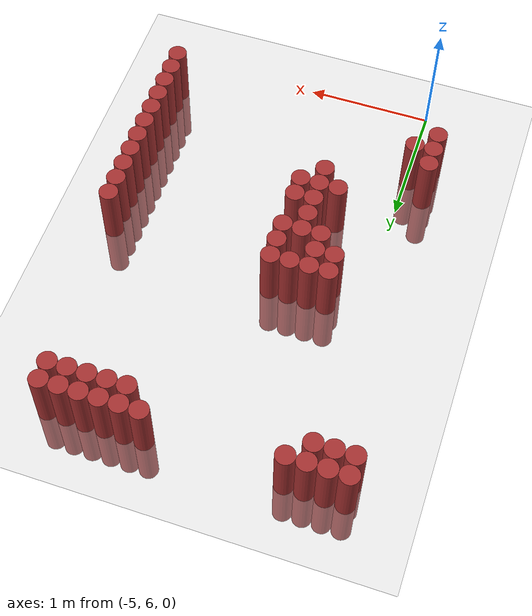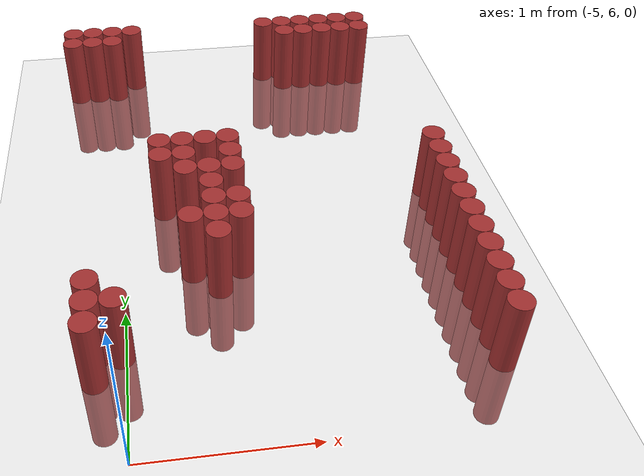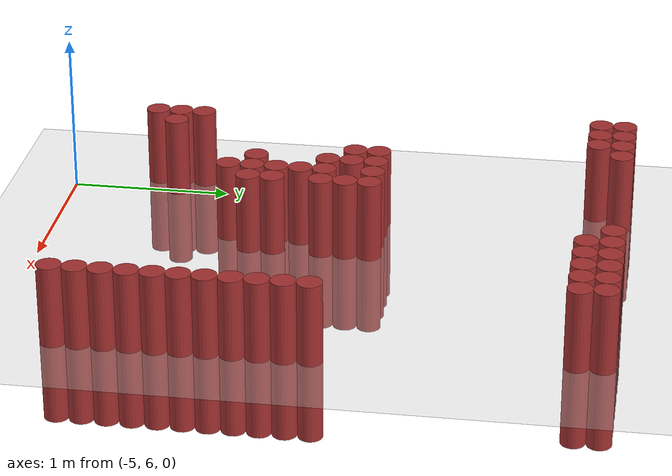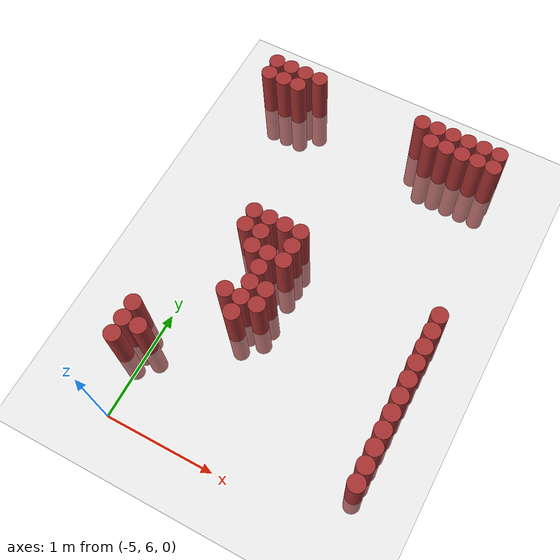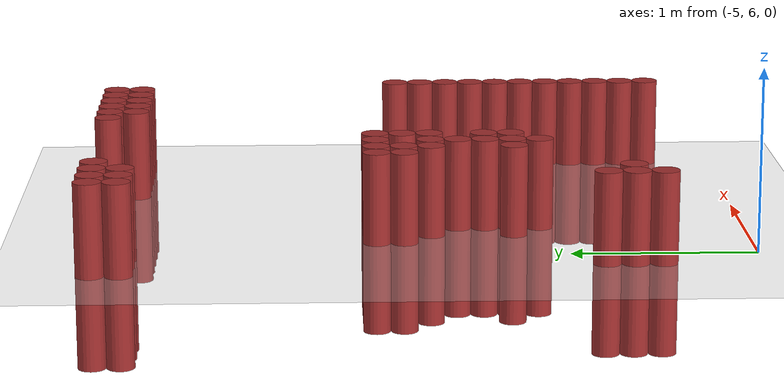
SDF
<sdf version="1.6">
 <world name="default">
  <model name="ground_plane">
   <static>1</static>
   <link name="link">
    <collision name="collision">
     <geometry><plane><normal>0 0 1</normal><size>100 100</size></plane></geometry>
     <surface><friction><ode><mu>100</mu><mu2>50</mu2></ode></friction></surface>
    </collision>
    <visual name="visual">
     <cast_shadows>0</cast_shadows>
     <geometry><plane><normal>0 0 1</normal><size>100 100</size></plane></geometry>
     <material>
      <script><uri>file://media/materials/scripts/gazebo.material</uri><name>Gazebo/Grey</name></script>
     </material>
    </visual>
   </link>
  </model>
  <model name="unit_cylinder_249">
   <static>1</static>
   <pose>-5.325000 9.375000 0.000000 0.000000 0.000000 0.000000</pose>
   <link name="link">
    <inertial>
     <mass>1</mass>
     <inertia><ixx>0.145833</ixx><ixy>0</ixy><ixz>0</ixz><iyy>0.145833</iyy><iyz>0</iyz><izz>0.125</izz></inertia>
    </inertial>
    <collision name="collision">
     <geometry><cylinder><radius>0.075000</radius><length>1</length></cylinder></geometry>
    </collision>
    <visual name="visual">
     <geometry><cylinder><radius>0.075000</radius><length>1</length></cylinder></geometry>
     <material>
      <ambient>0.648000 0.192000 0.192000 1</ambient>
      <diffuse>0.648000 0.192000 0.192000 1</diffuse>
     </material>
     <material>
      <script><name>Gazebo/Grey</name><uri>file://media/materials/scripts/gazebo.material</uri></script>
     </material>
    </visual>
   </link>
  </model>
  <model name="unit_cylinder_250">
   <static>1</static>
   <pose>-5.325000 9.525000 0.000000 0.000000 0.000000 0.000000</pose>
   <link name="link">
    <inertial>
     <mass>1</mass>
     <inertia><ixx>0.145833</ixx><ixy>0</ixy><ixz>0</ixz><iyy>0.145833</iyy><iyz>0</iyz><izz>0.125</izz></inertia>
    </inertial>
    <collision name="collision">
     <geometry><cylinder><radius>0.075000</radius><length>1</length></cylinder></geometry>
    </collision>
    <visual name="visual">
     <geometry><cylinder><radius>0.075000</radius><length>1</length></cylinder></geometry>
     <material>
      <ambient>0.648000 0.192000 0.192000 1</ambient>
      <diffuse>0.648000 0.192000 0.192000 1</diffuse>
     </material>
     <material>
      <script><name>Gazebo/Grey</name><uri>file://media/materials/scripts/gazebo.material</uri></script>
     </material>
    </visual>
   </link>
  </model>
  <model name="unit_cylinder_251">
   <static>1</static>
   <pose>-5.175000 6.525000 0.000000 0.000000 0.000000 0.000000</pose>
   <link name="link">
    <inertial>
     <mass>1</mass>
     <inertia><ixx>0.145833</ixx><ixy>0</ixy><ixz>0</ixz><iyy>0.145833</iyy><iyz>0</iyz><izz>0.125</izz></inertia>
    </inertial>
    <collision name="collision">
     <geometry><cylinder><radius>0.075000</radius><length>1</length></cylinder></geometry>
    </collision>
    <visual name="visual">
     <geometry><cylinder><radius>0.075000</radius><length>1</length></cylinder></geometry>
     <material>
      <ambient>0.648000 0.192000 0.192000 1</ambient>
      <diffuse>0.648000 0.192000 0.192000 1</diffuse>
     </material>
     <material>
      <script><name>Gazebo/Grey</name><uri>file://media/materials/scripts/gazebo.material</uri></script>
     </material>
    </visual>
   </link>
  </model>
  <model name="unit_cylinder_252">
   <static>1</static>
   <pose>-5.175000 6.675000 0.000000 0.000000 0.000000 0.000000</pose>
   <link name="link">
    <inertial>
     <mass>1</mass>
     <inertia><ixx>0.145833</ixx><ixy>0</ixy><ixz>0</ixz><iyy>0.145833</iyy><iyz>0</iyz><izz>0.125</izz></inertia>
    </inertial>
    <collision name="collision">
     <geometry><cylinder><radius>0.075000</radius><length>1</length></cylinder></geometry>
    </collision>
    <visual name="visual">
     <geometry><cylinder><radius>0.075000</radius><length>1</length></cylinder></geometry>
     <material>
      <ambient>0.648000 0.192000 0.192000 1</ambient>
      <diffuse>0.648000 0.192000 0.192000 1</diffuse>
     </material>
     <material>
      <script><name>Gazebo/Grey</name><uri>file://media/materials/scripts/gazebo.material</uri></script>
     </material>
    </visual>
   </link>
  </model>
  <model name="unit_cylinder_253">
   <static>1</static>
   <pose>-5.175000 6.825000 0.000000 0.000000 0.000000 0.000000</pose>
   <link name="link">
    <inertial>
     <mass>1</mass>
     <inertia><ixx>0.145833</ixx><ixy>0</ixy><ixz>0</ixz><iyy>0.145833</iyy><iyz>0</iyz><izz>0.125</izz></inertia>
    </inertial>
    <collision name="collision">
     <geometry><cylinder><radius>0.075000</radius><length>1</length></cylinder></geometry>
    </collision>
    <visual name="visual">
     <geometry><cylinder><radius>0.075000</radius><length>1</length></cylinder></geometry>
     <material>
      <ambient>0.648000 0.192000 0.192000 1</ambient>
      <diffuse>0.648000 0.192000 0.192000 1</diffuse>
     </material>
     <material>
      <script><name>Gazebo/Grey</name><uri>file://media/materials/scripts/gazebo.material</uri></script>
     </material>
    </visual>
   </link>
  </model>
  <model name="unit_cylinder_254">
   <static>1</static>
   <pose>-5.175000 9.375000 0.000000 0.000000 0.000000 0.000000</pose>
   <link name="link">
    <inertial>
     <mass>1</mass>
     <inertia><ixx>0.145833</ixx><ixy>0</ixy><ixz>0</ixz><iyy>0.145833</iyy><iyz>0</iyz><izz>0.125</izz></inertia>
    </inertial>
    <collision name="collision">
     <geometry><cylinder><radius>0.075000</radius><length>1</length></cylinder></geometry>
    </collision>
    <visual name="visual">
     <geometry><cylinder><radius>0.075000</radius><length>1</length></cylinder></geometry>
     <material>
      <ambient>0.648000 0.192000 0.192000 1</ambient>
      <diffuse>0.648000 0.192000 0.192000 1</diffuse>
     </material>
     <material>
      <script><name>Gazebo/Grey</name><uri>file://media/materials/scripts/gazebo.material</uri></script>
     </material>
    </visual>
   </link>
  </model>
  <model name="unit_cylinder_255">
   <static>1</static>
   <pose>-5.175000 9.525000 0.000000 0.000000 0.000000 0.000000</pose>
   <link name="link">
    <inertial>
     <mass>1</mass>
     <inertia><ixx>0.145833</ixx><ixy>0</ixy><ixz>0</ixz><iyy>0.145833</iyy><iyz>0</iyz><izz>0.125</izz></inertia>
    </inertial>
    <collision name="collision">
     <geometry><cylinder><radius>0.075000</radius><length>1</length></cylinder></geometry>
    </collision>
    <visual name="visual">
     <geometry><cylinder><radius>0.075000</radius><length>1</length></cylinder></geometry>
     <material>
      <ambient>0.648000 0.192000 0.192000 1</ambient>
      <diffuse>0.648000 0.192000 0.192000 1</diffuse>
     </material>
     <material>
      <script><name>Gazebo/Grey</name><uri>file://media/materials/scripts/gazebo.material</uri></script>
     </material>
    </visual>
   </link>
  </model>
  <model name="unit_cylinder_256">
   <static>1</static>
   <pose>-5.025000 6.675000 0.000000 0.000000 0.000000 0.000000</pose>
   <link name="link">
    <inertial>
     <mass>1</mass>
     <inertia><ixx>0.145833</ixx><ixy>0</ixy><ixz>0</ixz><iyy>0.145833</iyy><iyz>0</iyz><izz>0.125</izz></inertia>
    </inertial>
    <collision name="collision">
     <geometry><cylinder><radius>0.075000</radius><length>1</length></cylinder></geometry>
    </collision>
    <visual name="visual">
     <geometry><cylinder><radius>0.075000</radius><length>1</length></cylinder></geometry>
     <material>
      <ambient>0.648000 0.192000 0.192000 1</ambient>
      <diffuse>0.648000 0.192000 0.192000 1</diffuse>
     </material>
     <material>
      <script><name>Gazebo/Grey</name><uri>file://media/materials/scripts/gazebo.material</uri></script>
     </material>
    </visual>
   </link>
  </model>
  <model name="unit_cylinder_257">
   <static>1</static>
   <pose>-5.025000 9.375000 0.000000 0.000000 0.000000 0.000000</pose>
   <link name="link">
    <inertial>
     <mass>1</mass>
     <inertia><ixx>0.145833</ixx><ixy>0</ixy><ixz>0</ixz><iyy>0.145833</iyy><iyz>0</iyz><izz>0.125</izz></inertia>
    </inertial>
    <collision name="collision">
     <geometry><cylinder><radius>0.075000</radius><length>1</length></cylinder></geometry>
    </collision>
    <visual name="visual">
     <geometry><cylinder><radius>0.075000</radius><length>1</length></cylinder></geometry>
     <material>
      <ambient>0.648000 0.192000 0.192000 1</ambient>
      <diffuse>0.648000 0.192000 0.192000 1</diffuse>
     </material>
     <material>
      <script><name>Gazebo/Grey</name><uri>file://media/materials/scripts/gazebo.material</uri></script>
     </material>
    </visual>
   </link>
  </model>
  <model name="unit_cylinder_258">
   <static>1</static>
   <pose>-5.025000 9.525000 0.000000 0.000000 0.000000 0.000000</pose>
   <link name="link">
    <inertial>
     <mass>1</mass>
     <inertia><ixx>0.145833</ixx><ixy>0</ixy><ixz>0</ixz><iyy>0.145833</iyy><iyz>0</iyz><izz>0.125</izz></inertia>
    </inertial>
    <collision name="collision">
     <geometry><cylinder><radius>0.075000</radius><length>1</length></cylinder></geometry>
    </collision>
    <visual name="visual">
     <geometry><cylinder><radius>0.075000</radius><length>1</length></cylinder></geometry>
     <material>
      <ambient>0.648000 0.192000 0.192000 1</ambient>
      <diffuse>0.648000 0.192000 0.192000 1</diffuse>
     </material>
     <material>
      <script><name>Gazebo/Grey</name><uri>file://media/materials/scripts/gazebo.material</uri></script>
     </material>
    </visual>
   </link>
  </model>
  <model name="unit_cylinder_260">
   <static>1</static>
   <pose>-4.875000 9.525000 0.000000 0.000000 0.000000 0.000000</pose>
   <link name="link">
    <inertial>
     <mass>1</mass>
     <inertia><ixx>0.145833</ixx><ixy>0</ixy><ixz>0</ixz><iyy>0.145833</iyy><iyz>0</iyz><izz>0.125</izz></inertia>
    </inertial>
    <collision name="collision">
     <geometry><cylinder><radius>0.075000</radius><length>1</length></cylinder></geometry>
    </collision>
    <visual name="visual">
     <geometry><cylinder><radius>0.075000</radius><length>1</length></cylinder></geometry>
     <material>
      <ambient>0.648000 0.192000 0.192000 1</ambient>
      <diffuse>0.648000 0.192000 0.192000 1</diffuse>
     </material>
     <material>
      <script><name>Gazebo/Grey</name><uri>file://media/materials/scripts/gazebo.material</uri></script>
     </material>
    </visual>
   </link>
  </model>
  <model name="unit_cylinder_262">
   <static>1</static>
   <pose>-4.725000 7.875000 0.000000 0.000000 0.000000 0.000000</pose>
   <link name="link">
    <inertial>
     <mass>1</mass>
     <inertia><ixx>0.145833</ixx><ixy>0</ixy><ixz>0</ixz><iyy>0.145833</iyy><iyz>0</iyz><izz>0.125</izz></inertia>
    </inertial>
    <collision name="collision">
     <geometry><cylinder><radius>0.075000</radius><length>1</length></cylinder></geometry>
    </collision>
    <visual name="visual">
     <geometry><cylinder><radius>0.075000</radius><length>1</length></cylinder></geometry>
     <material>
      <ambient>0.648000 0.192000 0.192000 1</ambient>
      <diffuse>0.648000 0.192000 0.192000 1</diffuse>
     </material>
     <material>
      <script><name>Gazebo/Grey</name><uri>file://media/materials/scripts/gazebo.material</uri></script>
     </material>
    </visual>
   </link>
  </model>
  <model name="unit_cylinder_263">
   <static>1</static>
   <pose>-4.725000 8.025000 0.000000 0.000000 0.000000 0.000000</pose>
   <link name="link">
    <inertial>
     <mass>1</mass>
     <inertia><ixx>0.145833</ixx><ixy>0</ixy><ixz>0</ixz><iyy>0.145833</iyy><iyz>0</iyz><izz>0.125</izz></inertia>
    </inertial>
    <collision name="collision">
     <geometry><cylinder><radius>0.075000</radius><length>1</length></cylinder></geometry>
    </collision>
    <visual name="visual">
     <geometry><cylinder><radius>0.075000</radius><length>1</length></cylinder></geometry>
     <material>
      <ambient>0.648000 0.192000 0.192000 1</ambient>
      <diffuse>0.648000 0.192000 0.192000 1</diffuse>
     </material>
     <material>
      <script><name>Gazebo/Grey</name><uri>file://media/materials/scripts/gazebo.material</uri></script>
     </material>
    </visual>
   </link>
  </model>
  <model name="unit_cylinder_265">
   <static>1</static>
   <pose>-4.575000 7.275000 0.000000 0.000000 0.000000 0.000000</pose>
   <link name="link">
    <inertial>
     <mass>1</mass>
     <inertia><ixx>0.145833</ixx><ixy>0</ixy><ixz>0</ixz><iyy>0.145833</iyy><iyz>0</iyz><izz>0.125</izz></inertia>
    </inertial>
    <collision name="collision">
     <geometry><cylinder><radius>0.075000</radius><length>1</length></cylinder></geometry>
    </collision>
    <visual name="visual">
     <geometry><cylinder><radius>0.075000</radius><length>1</length></cylinder></geometry>
     <material>
      <ambient>0.648000 0.192000 0.192000 1</ambient>
      <diffuse>0.648000 0.192000 0.192000 1</diffuse>
     </material>
     <material>
      <script><name>Gazebo/Grey</name><uri>file://media/materials/scripts/gazebo.material</uri></script>
     </material>
    </visual>
   </link>
  </model>
  <model name="unit_cylinder_266">
   <static>1</static>
   <pose>-4.575000 7.725000 0.000000 0.000000 0.000000 0.000000</pose>
   <link name="link">
    <inertial>
     <mass>1</mass>
     <inertia><ixx>0.145833</ixx><ixy>0</ixy><ixz>0</ixz><iyy>0.145833</iyy><iyz>0</iyz><izz>0.125</izz></inertia>
    </inertial>
    <collision name="collision">
     <geometry><cylinder><radius>0.075000</radius><length>1</length></cylinder></geometry>
    </collision>
    <visual name="visual">
     <geometry><cylinder><radius>0.075000</radius><length>1</length></cylinder></geometry>
     <material>
      <ambient>0.648000 0.192000 0.192000 1</ambient>
      <diffuse>0.648000 0.192000 0.192000 1</diffuse>
     </material>
     <material>
      <script><name>Gazebo/Grey</name><uri>file://media/materials/scripts/gazebo.material</uri></script>
     </material>
    </visual>
   </link>
  </model>
  <model name="unit_cylinder_267">
   <static>1</static>
   <pose>-4.575000 7.875000 0.000000 0.000000 0.000000 0.000000</pose>
   <link name="link">
    <inertial>
     <mass>1</mass>
     <inertia><ixx>0.145833</ixx><ixy>0</ixy><ixz>0</ixz><iyy>0.145833</iyy><iyz>0</iyz><izz>0.125</izz></inertia>
    </inertial>
    <collision name="collision">
     <geometry><cylinder><radius>0.075000</radius><length>1</length></cylinder></geometry>
    </collision>
    <visual name="visual">
     <geometry><cylinder><radius>0.075000</radius><length>1</length></cylinder></geometry>
     <material>
      <ambient>0.648000 0.192000 0.192000 1</ambient>
      <diffuse>0.648000 0.192000 0.192000 1</diffuse>
     </material>
     <material>
      <script><name>Gazebo/Grey</name><uri>file://media/materials/scripts/gazebo.material</uri></script>
     </material>
    </visual>
   </link>
  </model>
  <model name="unit_cylinder_268">
   <static>1</static>
   <pose>-4.575000 8.025000 0.000000 0.000000 0.000000 0.000000</pose>
   <link name="link">
    <inertial>
     <mass>1</mass>
     <inertia><ixx>0.145833</ixx><ixy>0</ixy><ixz>0</ixz><iyy>0.145833</iyy><iyz>0</iyz><izz>0.125</izz></inertia>
    </inertial>
    <collision name="collision">
     <geometry><cylinder><radius>0.075000</radius><length>1</length></cylinder></geometry>
    </collision>
    <visual name="visual">
     <geometry><cylinder><radius>0.075000</radius><length>1</length></cylinder></geometry>
     <material>
      <ambient>0.648000 0.192000 0.192000 1</ambient>
      <diffuse>0.648000 0.192000 0.192000 1</diffuse>
     </material>
     <material>
      <script><name>Gazebo/Grey</name><uri>file://media/materials/scripts/gazebo.material</uri></script>
     </material>
    </visual>
   </link>
  </model>
  <model name="unit_cylinder_270">
   <static>1</static>
   <pose>-4.425000 7.125000 0.000000 0.000000 0.000000 0.000000</pose>
   <link name="link">
    <inertial>
     <mass>1</mass>
     <inertia><ixx>0.145833</ixx><ixy>0</ixy><ixz>0</ixz><iyy>0.145833</iyy><iyz>0</iyz><izz>0.125</izz></inertia>
    </inertial>
    <collision name="collision">
     <geometry><cylinder><radius>0.075000</radius><length>1</length></cylinder></geometry>
    </collision>
    <visual name="visual">
     <geometry><cylinder><radius>0.075000</radius><length>1</length></cylinder></geometry>
     <material>
      <ambient>0.648000 0.192000 0.192000 1</ambient>
      <diffuse>0.648000 0.192000 0.192000 1</diffuse>
     </material>
     <material>
      <script><name>Gazebo/Grey</name><uri>file://media/materials/scripts/gazebo.material</uri></script>
     </material>
    </visual>
   </link>
  </model>
  <model name="unit_cylinder_271">
   <static>1</static>
   <pose>-4.425000 7.275000 0.000000 0.000000 0.000000 0.000000</pose>
   <link name="link">
    <inertial>
     <mass>1</mass>
     <inertia><ixx>0.145833</ixx><ixy>0</ixy><ixz>0</ixz><iyy>0.145833</iyy><iyz>0</iyz><izz>0.125</izz></inertia>
    </inertial>
    <collision name="collision">
     <geometry><cylinder><radius>0.075000</radius><length>1</length></cylinder></geometry>
    </collision>
    <visual name="visual">
     <geometry><cylinder><radius>0.075000</radius><length>1</length></cylinder></geometry>
     <material>
      <ambient>0.648000 0.192000 0.192000 1</ambient>
      <diffuse>0.648000 0.192000 0.192000 1</diffuse>
     </material>
     <material>
      <script><name>Gazebo/Grey</name><uri>file://media/materials/scripts/gazebo.material</uri></script>
     </material>
    </visual>
   </link>
  </model>
  <model name="unit_cylinder_272">
   <static>1</static>
   <pose>-4.425000 7.425000 0.000000 0.000000 0.000000 0.000000</pose>
   <link name="link">
    <inertial>
     <mass>1</mass>
     <inertia><ixx>0.145833</ixx><ixy>0</ixy><ixz>0</ixz><iyy>0.145833</iyy><iyz>0</iyz><izz>0.125</izz></inertia>
    </inertial>
    <collision name="collision">
     <geometry><cylinder><radius>0.075000</radius><length>1</length></cylinder></geometry>
    </collision>
    <visual name="visual">
     <geometry><cylinder><radius>0.075000</radius><length>1</length></cylinder></geometry>
     <material>
      <ambient>0.648000 0.192000 0.192000 1</ambient>
      <diffuse>0.648000 0.192000 0.192000 1</diffuse>
     </material>
     <material>
      <script><name>Gazebo/Grey</name><uri>file://media/materials/scripts/gazebo.material</uri></script>
     </material>
    </visual>
   </link>
  </model>
  <model name="unit_cylinder_273">
   <static>1</static>
   <pose>-4.425000 7.575000 0.000000 0.000000 0.000000 0.000000</pose>
   <link name="link">
    <inertial>
     <mass>1</mass>
     <inertia><ixx>0.145833</ixx><ixy>0</ixy><ixz>0</ixz><iyy>0.145833</iyy><iyz>0</iyz><izz>0.125</izz></inertia>
    </inertial>
    <collision name="collision">
     <geometry><cylinder><radius>0.075000</radius><length>1</length></cylinder></geometry>
    </collision>
    <visual name="visual">
     <geometry><cylinder><radius>0.075000</radius><length>1</length></cylinder></geometry>
     <material>
      <ambient>0.648000 0.192000 0.192000 1</ambient>
      <diffuse>0.648000 0.192000 0.192000 1</diffuse>
     </material>
     <material>
      <script><name>Gazebo/Grey</name><uri>file://media/materials/scripts/gazebo.material</uri></script>
     </material>
    </visual>
   </link>
  </model>
  <model name="unit_cylinder_274">
   <static>1</static>
   <pose>-4.425000 7.725000 0.000000 0.000000 0.000000 0.000000</pose>
   <link name="link">
    <inertial>
     <mass>1</mass>
     <inertia><ixx>0.145833</ixx><ixy>0</ixy><ixz>0</ixz><iyy>0.145833</iyy><iyz>0</iyz><izz>0.125</izz></inertia>
    </inertial>
    <collision name="collision">
     <geometry><cylinder><radius>0.075000</radius><length>1</length></cylinder></geometry>
    </collision>
    <visual name="visual">
     <geometry><cylinder><radius>0.075000</radius><length>1</length></cylinder></geometry>
     <material>
      <ambient>0.648000 0.192000 0.192000 1</ambient>
      <diffuse>0.648000 0.192000 0.192000 1</diffuse>
     </material>
     <material>
      <script><name>Gazebo/Grey</name><uri>file://media/materials/scripts/gazebo.material</uri></script>
     </material>
    </visual>
   </link>
  </model>
  <model name="unit_cylinder_275">
   <static>1</static>
   <pose>-4.425000 8.025000 0.000000 0.000000 0.000000 0.000000</pose>
   <link name="link">
    <inertial>
     <mass>1</mass>
     <inertia><ixx>0.145833</ixx><ixy>0</ixy><ixz>0</ixz><iyy>0.145833</iyy><iyz>0</iyz><izz>0.125</izz></inertia>
    </inertial>
    <collision name="collision">
     <geometry><cylinder><radius>0.075000</radius><length>1</length></cylinder></geometry>
    </collision>
    <visual name="visual">
     <geometry><cylinder><radius>0.075000</radius><length>1</length></cylinder></geometry>
     <material>
      <ambient>0.648000 0.192000 0.192000 1</ambient>
      <diffuse>0.648000 0.192000 0.192000 1</diffuse>
     </material>
     <material>
      <script><name>Gazebo/Grey</name><uri>file://media/materials/scripts/gazebo.material</uri></script>
     </material>
    </visual>
   </link>
  </model>
  <model name="unit_cylinder_277">
   <static>1</static>
   <pose>-4.275000 7.275000 0.000000 0.000000 0.000000 0.000000</pose>
   <link name="link">
    <inertial>
     <mass>1</mass>
     <inertia><ixx>0.145833</ixx><ixy>0</ixy><ixz>0</ixz><iyy>0.145833</iyy><iyz>0</iyz><izz>0.125</izz></inertia>
    </inertial>
    <collision name="collision">
     <geometry><cylinder><radius>0.075000</radius><length>1</length></cylinder></geometry>
    </collision>
    <visual name="visual">
     <geometry><cylinder><radius>0.075000</radius><length>1</length></cylinder></geometry>
     <material>
      <ambient>0.648000 0.192000 0.192000 1</ambient>
      <diffuse>0.648000 0.192000 0.192000 1</diffuse>
     </material>
     <material>
      <script><name>Gazebo/Grey</name><uri>file://media/materials/scripts/gazebo.material</uri></script>
     </material>
    </visual>
   </link>
  </model>
  <model name="unit_cylinder_278">
   <static>1</static>
   <pose>-4.275000 7.425000 0.000000 0.000000 0.000000 0.000000</pose>
   <link name="link">
    <inertial>
     <mass>1</mass>
     <inertia><ixx>0.145833</ixx><ixy>0</ixy><ixz>0</ixz><iyy>0.145833</iyy><iyz>0</iyz><izz>0.125</izz></inertia>
    </inertial>
    <collision name="collision">
     <geometry><cylinder><radius>0.075000</radius><length>1</length></cylinder></geometry>
    </collision>
    <visual name="visual">
     <geometry><cylinder><radius>0.075000</radius><length>1</length></cylinder></geometry>
     <material>
      <ambient>0.648000 0.192000 0.192000 1</ambient>
      <diffuse>0.648000 0.192000 0.192000 1</diffuse>
     </material>
     <material>
      <script><name>Gazebo/Grey</name><uri>file://media/materials/scripts/gazebo.material</uri></script>
     </material>
    </visual>
   </link>
  </model>
  <model name="unit_cylinder_279">
   <static>1</static>
   <pose>-4.275000 7.725000 0.000000 0.000000 0.000000 0.000000</pose>
   <link name="link">
    <inertial>
     <mass>1</mass>
     <inertia><ixx>0.145833</ixx><ixy>0</ixy><ixz>0</ixz><iyy>0.145833</iyy><iyz>0</iyz><izz>0.125</izz></inertia>
    </inertial>
    <collision name="collision">
     <geometry><cylinder><radius>0.075000</radius><length>1</length></cylinder></geometry>
    </collision>
    <visual name="visual">
     <geometry><cylinder><radius>0.075000</radius><length>1</length></cylinder></geometry>
     <material>
      <ambient>0.648000 0.192000 0.192000 1</ambient>
      <diffuse>0.648000 0.192000 0.192000 1</diffuse>
     </material>
     <material>
      <script><name>Gazebo/Grey</name><uri>file://media/materials/scripts/gazebo.material</uri></script>
     </material>
    </visual>
   </link>
  </model>
  <model name="unit_cylinder_280">
   <static>1</static>
   <pose>-4.275000 7.875000 0.000000 0.000000 0.000000 0.000000</pose>
   <link name="link">
    <inertial>
     <mass>1</mass>
     <inertia><ixx>0.145833</ixx><ixy>0</ixy><ixz>0</ixz><iyy>0.145833</iyy><iyz>0</iyz><izz>0.125</izz></inertia>
    </inertial>
    <collision name="collision">
     <geometry><cylinder><radius>0.075000</radius><length>1</length></cylinder></geometry>
    </collision>
    <visual name="visual">
     <geometry><cylinder><radius>0.075000</radius><length>1</length></cylinder></geometry>
     <material>
      <ambient>0.648000 0.192000 0.192000 1</ambient>
      <diffuse>0.648000 0.192000 0.192000 1</diffuse>
     </material>
     <material>
      <script><name>Gazebo/Grey</name><uri>file://media/materials/scripts/gazebo.material</uri></script>
     </material>
    </visual>
   </link>
  </model>
  <model name="unit_cylinder_281">
   <static>1</static>
   <pose>-4.275000 8.025000 0.000000 0.000000 0.000000 0.000000</pose>
   <link name="link">
    <inertial>
     <mass>1</mass>
     <inertia><ixx>0.145833</ixx><ixy>0</ixy><ixz>0</ixz><iyy>0.145833</iyy><iyz>0</iyz><izz>0.125</izz></inertia>
    </inertial>
    <collision name="collision">
     <geometry><cylinder><radius>0.075000</radius><length>1</length></cylinder></geometry>
    </collision>
    <visual name="visual">
     <geometry><cylinder><radius>0.075000</radius><length>1</length></cylinder></geometry>
     <material>
      <ambient>0.648000 0.192000 0.192000 1</ambient>
      <diffuse>0.648000 0.192000 0.192000 1</diffuse>
     </material>
     <material>
      <script><name>Gazebo/Grey</name><uri>file://media/materials/scripts/gazebo.material</uri></script>
     </material>
    </visual>
   </link>
  </model>
  <model name="unit_cylinder_286">
   <static>1</static>
   <pose>-3.825000 9.525000 0.000000 0.000000 0.000000 0.000000</pose>
   <link name="link">
    <inertial>
     <mass>1</mass>
     <inertia><ixx>0.145833</ixx><ixy>0</ixy><ixz>0</ixz><iyy>0.145833</iyy><iyz>0</iyz><izz>0.125</izz></inertia>
    </inertial>
    <collision name="collision">
     <geometry><cylinder><radius>0.075000</radius><length>1</length></cylinder></geometry>
    </collision>
    <visual name="visual">
     <geometry><cylinder><radius>0.075000</radius><length>1</length></cylinder></geometry>
     <material>
      <ambient>0.648000 0.192000 0.192000 1</ambient>
      <diffuse>0.648000 0.192000 0.192000 1</diffuse>
     </material>
     <material>
      <script><name>Gazebo/Grey</name><uri>file://media/materials/scripts/gazebo.material</uri></script>
     </material>
    </visual>
   </link>
  </model>
  <model name="unit_cylinder_292">
   <static>1</static>
   <pose>-3.675000 9.375000 0.000000 0.000000 0.000000 0.000000</pose>
   <link name="link">
    <inertial>
     <mass>1</mass>
     <inertia><ixx>0.145833</ixx><ixy>0</ixy><ixz>0</ixz><iyy>0.145833</iyy><iyz>0</iyz><izz>0.125</izz></inertia>
    </inertial>
    <collision name="collision">
     <geometry><cylinder><radius>0.075000</radius><length>1</length></cylinder></geometry>
    </collision>
    <visual name="visual">
     <geometry><cylinder><radius>0.075000</radius><length>1</length></cylinder></geometry>
     <material>
      <ambient>0.648000 0.192000 0.192000 1</ambient>
      <diffuse>0.648000 0.192000 0.192000 1</diffuse>
     </material>
     <material>
      <script><name>Gazebo/Grey</name><uri>file://media/materials/scripts/gazebo.material</uri></script>
     </material>
    </visual>
   </link>
  </model>
  <model name="unit_cylinder_293">
   <static>1</static>
   <pose>-3.675000 9.525000 0.000000 0.000000 0.000000 0.000000</pose>
   <link name="link">
    <inertial>
     <mass>1</mass>
     <inertia><ixx>0.145833</ixx><ixy>0</ixy><ixz>0</ixz><iyy>0.145833</iyy><iyz>0</iyz><izz>0.125</izz></inertia>
    </inertial>
    <collision name="collision">
     <geometry><cylinder><radius>0.075000</radius><length>1</length></cylinder></geometry>
    </collision>
    <visual name="visual">
     <geometry><cylinder><radius>0.075000</radius><length>1</length></cylinder></geometry>
     <material>
      <ambient>0.648000 0.192000 0.192000 1</ambient>
      <diffuse>0.648000 0.192000 0.192000 1</diffuse>
     </material>
     <material>
      <script><name>Gazebo/Grey</name><uri>file://media/materials/scripts/gazebo.material</uri></script>
     </material>
    </visual>
   </link>
  </model>
  <model name="unit_cylinder_296">
   <static>1</static>
   <pose>-3.525000 9.375000 0.000000 0.000000 0.000000 0.000000</pose>
   <link name="link">
    <inertial>
     <mass>1</mass>
     <inertia><ixx>0.145833</ixx><ixy>0</ixy><ixz>0</ixz><iyy>0.145833</iyy><iyz>0</iyz><izz>0.125</izz></inertia>
    </inertial>
    <collision name="collision">
     <geometry><cylinder><radius>0.075000</radius><length>1</length></cylinder></geometry>
    </collision>
    <visual name="visual">
     <geometry><cylinder><radius>0.075000</radius><length>1</length></cylinder></geometry>
     <material>
      <ambient>0.648000 0.192000 0.192000 1</ambient>
      <diffuse>0.648000 0.192000 0.192000 1</diffuse>
     </material>
     <material>
      <script><name>Gazebo/Grey</name><uri>file://media/materials/scripts/gazebo.material</uri></script>
     </material>
    </visual>
   </link>
  </model>
  <model name="unit_cylinder_297">
   <static>1</static>
   <pose>-3.525000 9.525000 0.000000 0.000000 0.000000 0.000000</pose>
   <link name="link">
    <inertial>
     <mass>1</mass>
     <inertia><ixx>0.145833</ixx><ixy>0</ixy><ixz>0</ixz><iyy>0.145833</iyy><iyz>0</iyz><izz>0.125</izz></inertia>
    </inertial>
    <collision name="collision">
     <geometry><cylinder><radius>0.075000</radius><length>1</length></cylinder></geometry>
    </collision>
    <visual name="visual">
     <geometry><cylinder><radius>0.075000</radius><length>1</length></cylinder></geometry>
     <material>
      <ambient>0.648000 0.192000 0.192000 1</ambient>
      <diffuse>0.648000 0.192000 0.192000 1</diffuse>
     </material>
     <material>
      <script><name>Gazebo/Grey</name><uri>file://media/materials/scripts/gazebo.material</uri></script>
     </material>
    </visual>
   </link>
  </model>
  <model name="unit_cylinder_300">
   <static>1</static>
   <pose>-3.375000 9.375000 0.000000 0.000000 0.000000 0.000000</pose>
   <link name="link">
    <inertial>
     <mass>1</mass>
     <inertia><ixx>0.145833</ixx><ixy>0</ixy><ixz>0</ixz><iyy>0.145833</iyy><iyz>0</iyz><izz>0.125</izz></inertia>
    </inertial>
    <collision name="collision">
     <geometry><cylinder><radius>0.075000</radius><length>1</length></cylinder></geometry>
    </collision>
    <visual name="visual">
     <geometry><cylinder><radius>0.075000</radius><length>1</length></cylinder></geometry>
     <material>
      <ambient>0.648000 0.192000 0.192000 1</ambient>
      <diffuse>0.648000 0.192000 0.192000 1</diffuse>
     </material>
     <material>
      <script><name>Gazebo/Grey</name><uri>file://media/materials/scripts/gazebo.material</uri></script>
     </material>
    </visual>
   </link>
  </model>
  <model name="unit_cylinder_301">
   <static>1</static>
   <pose>-3.375000 9.525000 0.000000 0.000000 0.000000 0.000000</pose>
   <link name="link">
    <inertial>
     <mass>1</mass>
     <inertia><ixx>0.145833</ixx><ixy>0</ixy><ixz>0</ixz><iyy>0.145833</iyy><iyz>0</iyz><izz>0.125</izz></inertia>
    </inertial>
    <collision name="collision">
     <geometry><cylinder><radius>0.075000</radius><length>1</length></cylinder></geometry>
    </collision>
    <visual name="visual">
     <geometry><cylinder><radius>0.075000</radius><length>1</length></cylinder></geometry>
     <material>
      <ambient>0.648000 0.192000 0.192000 1</ambient>
      <diffuse>0.648000 0.192000 0.192000 1</diffuse>
     </material>
     <material>
      <script><name>Gazebo/Grey</name><uri>file://media/materials/scripts/gazebo.material</uri></script>
     </material>
    </visual>
   </link>
  </model>
  <model name="unit_cylinder_304">
   <static>1</static>
   <pose>-3.225000 9.375000 0.000000 0.000000 0.000000 0.000000</pose>
   <link name="link">
    <inertial>
     <mass>1</mass>
     <inertia><ixx>0.145833</ixx><ixy>0</ixy><ixz>0</ixz><iyy>0.145833</iyy><iyz>0</iyz><izz>0.125</izz></inertia>
    </inertial>
    <collision name="collision">
     <geometry><cylinder><radius>0.075000</radius><length>1</length></cylinder></geometry>
    </collision>
    <visual name="visual">
     <geometry><cylinder><radius>0.075000</radius><length>1</length></cylinder></geometry>
     <material>
      <ambient>0.648000 0.192000 0.192000 1</ambient>
      <diffuse>0.648000 0.192000 0.192000 1</diffuse>
     </material>
     <material>
      <script><name>Gazebo/Grey</name><uri>file://media/materials/scripts/gazebo.material</uri></script>
     </material>
    </visual>
   </link>
  </model>
  <model name="unit_cylinder_305">
   <static>1</static>
   <pose>-3.225000 9.525000 0.000000 0.000000 0.000000 0.000000</pose>
   <link name="link">
    <inertial>
     <mass>1</mass>
     <inertia><ixx>0.145833</ixx><ixy>0</ixy><ixz>0</ixz><iyy>0.145833</iyy><iyz>0</iyz><izz>0.125</izz></inertia>
    </inertial>
    <collision name="collision">
     <geometry><cylinder><radius>0.075000</radius><length>1</length></cylinder></geometry>
    </collision>
    <visual name="visual">
     <geometry><cylinder><radius>0.075000</radius><length>1</length></cylinder></geometry>
     <material>
      <ambient>0.648000 0.192000 0.192000 1</ambient>
      <diffuse>0.648000 0.192000 0.192000 1</diffuse>
     </material>
     <material>
      <script><name>Gazebo/Grey</name><uri>file://media/materials/scripts/gazebo.material</uri></script>
     </material>
    </visual>
   </link>
  </model>
  <model name="unit_cylinder_309">
   <static>1</static>
   <pose>-3.075000 9.375000 0.000000 0.000000 0.000000 0.000000</pose>
   <link name="link">
    <inertial>
     <mass>1</mass>
     <inertia><ixx>0.145833</ixx><ixy>0</ixy><ixz>0</ixz><iyy>0.145833</iyy><iyz>0</iyz><izz>0.125</izz></inertia>
    </inertial>
    <collision name="collision">
     <geometry><cylinder><radius>0.075000</radius><length>1</length></cylinder></geometry>
    </collision>
    <visual name="visual">
     <geometry><cylinder><radius>0.075000</radius><length>1</length></cylinder></geometry>
     <material>
      <ambient>0.648000 0.192000 0.192000 1</ambient>
      <diffuse>0.648000 0.192000 0.192000 1</diffuse>
     </material>
     <material>
      <script><name>Gazebo/Grey</name><uri>file://media/materials/scripts/gazebo.material</uri></script>
     </material>
    </visual>
   </link>
  </model>
  <model name="unit_cylinder_310">
   <static>1</static>
   <pose>-3.075000 9.525000 0.000000 0.000000 0.000000 0.000000</pose>
   <link name="link">
    <inertial>
     <mass>1</mass>
     <inertia><ixx>0.145833</ixx><ixy>0</ixy><ixz>0</ixz><iyy>0.145833</iyy><iyz>0</iyz><izz>0.125</izz></inertia>
    </inertial>
    <collision name="collision">
     <geometry><cylinder><radius>0.075000</radius><length>1</length></cylinder></geometry>
    </collision>
    <visual name="visual">
     <geometry><cylinder><radius>0.075000</radius><length>1</length></cylinder></geometry>
     <material>
      <ambient>0.648000 0.192000 0.192000 1</ambient>
      <diffuse>0.648000 0.192000 0.192000 1</diffuse>
     </material>
     <material>
      <script><name>Gazebo/Grey</name><uri>file://media/materials/scripts/gazebo.material</uri></script>
     </material>
    </visual>
   </link>
  </model>
  <model name="unit_cylinder_315">
   <static>1</static>
   <pose>-2.925000 6.375000 0.000000 0.000000 0.000000 0.000000</pose>
   <link name="link">
    <inertial>
     <mass>1</mass>
     <inertia><ixx>0.145833</ixx><ixy>0</ixy><ixz>0</ixz><iyy>0.145833</iyy><iyz>0</iyz><izz>0.125</izz></inertia>
    </inertial>
    <collision name="collision">
     <geometry><cylinder><radius>0.075000</radius><length>1</length></cylinder></geometry>
    </collision>
    <visual name="visual">
     <geometry><cylinder><radius>0.075000</radius><length>1</length></cylinder></geometry>
     <material>
      <ambient>0.648000 0.192000 0.192000 1</ambient>
      <diffuse>0.648000 0.192000 0.192000 1</diffuse>
     </material>
     <material>
      <script><name>Gazebo/Grey</name><uri>file://media/materials/scripts/gazebo.material</uri></script>
     </material>
    </visual>
   </link>
  </model>
  <model name="unit_cylinder_316">
   <static>1</static>
   <pose>-2.925000 6.525000 0.000000 0.000000 0.000000 0.000000</pose>
   <link name="link">
    <inertial>
     <mass>1</mass>
     <inertia><ixx>0.145833</ixx><ixy>0</ixy><ixz>0</ixz><iyy>0.145833</iyy><iyz>0</iyz><izz>0.125</izz></inertia>
    </inertial>
    <collision name="collision">
     <geometry><cylinder><radius>0.075000</radius><length>1</length></cylinder></geometry>
    </collision>
    <visual name="visual">
     <geometry><cylinder><radius>0.075000</radius><length>1</length></cylinder></geometry>
     <material>
      <ambient>0.648000 0.192000 0.192000 1</ambient>
      <diffuse>0.648000 0.192000 0.192000 1</diffuse>
     </material>
     <material>
      <script><name>Gazebo/Grey</name><uri>file://media/materials/scripts/gazebo.material</uri></script>
     </material>
    </visual>
   </link>
  </model>
  <model name="unit_cylinder_317">
   <static>1</static>
   <pose>-2.925000 6.675000 0.000000 0.000000 0.000000 0.000000</pose>
   <link name="link">
    <inertial>
     <mass>1</mass>
     <inertia><ixx>0.145833</ixx><ixy>0</ixy><ixz>0</ixz><iyy>0.145833</iyy><iyz>0</iyz><izz>0.125</izz></inertia>
    </inertial>
    <collision name="collision">
     <geometry><cylinder><radius>0.075000</radius><length>1</length></cylinder></geometry>
    </collision>
    <visual name="visual">
     <geometry><cylinder><radius>0.075000</radius><length>1</length></cylinder></geometry>
     <material>
      <ambient>0.648000 0.192000 0.192000 1</ambient>
      <diffuse>0.648000 0.192000 0.192000 1</diffuse>
     </material>
     <material>
      <script><name>Gazebo/Grey</name><uri>file://media/materials/scripts/gazebo.material</uri></script>
     </material>
    </visual>
   </link>
  </model>
  <model name="unit_cylinder_318">
   <static>1</static>
   <pose>-2.925000 6.825000 0.000000 0.000000 0.000000 0.000000</pose>
   <link name="link">
    <inertial>
     <mass>1</mass>
     <inertia><ixx>0.145833</ixx><ixy>0</ixy><ixz>0</ixz><iyy>0.145833</iyy><iyz>0</iyz><izz>0.125</izz></inertia>
    </inertial>
    <collision name="collision">
     <geometry><cylinder><radius>0.075000</radius><length>1</length></cylinder></geometry>
    </collision>
    <visual name="visual">
     <geometry><cylinder><radius>0.075000</radius><length>1</length></cylinder></geometry>
     <material>
      <ambient>0.648000 0.192000 0.192000 1</ambient>
      <diffuse>0.648000 0.192000 0.192000 1</diffuse>
     </material>
     <material>
      <script><name>Gazebo/Grey</name><uri>file://media/materials/scripts/gazebo.material</uri></script>
     </material>
    </visual>
   </link>
  </model>
  <model name="unit_cylinder_319">
   <static>1</static>
   <pose>-2.925000 6.975000 0.000000 0.000000 0.000000 0.000000</pose>
   <link name="link">
    <inertial>
     <mass>1</mass>
     <inertia><ixx>0.145833</ixx><ixy>0</ixy><ixz>0</ixz><iyy>0.145833</iyy><iyz>0</iyz><izz>0.125</izz></inertia>
    </inertial>
    <collision name="collision">
     <geometry><cylinder><radius>0.075000</radius><length>1</length></cylinder></geometry>
    </collision>
    <visual name="visual">
     <geometry><cylinder><radius>0.075000</radius><length>1</length></cylinder></geometry>
     <material>
      <ambient>0.648000 0.192000 0.192000 1</ambient>
      <diffuse>0.648000 0.192000 0.192000 1</diffuse>
     </material>
     <material>
      <script><name>Gazebo/Grey</name><uri>file://media/materials/scripts/gazebo.material</uri></script>
     </material>
    </visual>
   </link>
  </model>
  <model name="unit_cylinder_320">
   <static>1</static>
   <pose>-2.925000 7.125000 0.000000 0.000000 0.000000 0.000000</pose>
   <link name="link">
    <inertial>
     <mass>1</mass>
     <inertia><ixx>0.145833</ixx><ixy>0</ixy><ixz>0</ixz><iyy>0.145833</iyy><iyz>0</iyz><izz>0.125</izz></inertia>
    </inertial>
    <collision name="collision">
     <geometry><cylinder><radius>0.075000</radius><length>1</length></cylinder></geometry>
    </collision>
    <visual name="visual">
     <geometry><cylinder><radius>0.075000</radius><length>1</length></cylinder></geometry>
     <material>
      <ambient>0.648000 0.192000 0.192000 1</ambient>
      <diffuse>0.648000 0.192000 0.192000 1</diffuse>
     </material>
     <material>
      <script><name>Gazebo/Grey</name><uri>file://media/materials/scripts/gazebo.material</uri></script>
     </material>
    </visual>
   </link>
  </model>
  <model name="unit_cylinder_321">
   <static>1</static>
   <pose>-2.925000 7.275000 0.000000 0.000000 0.000000 0.000000</pose>
   <link name="link">
    <inertial>
     <mass>1</mass>
     <inertia><ixx>0.145833</ixx><ixy>0</ixy><ixz>0</ixz><iyy>0.145833</iyy><iyz>0</iyz><izz>0.125</izz></inertia>
    </inertial>
    <collision name="collision">
     <geometry><cylinder><radius>0.075000</radius><length>1</length></cylinder></geometry>
    </collision>
    <visual name="visual">
     <geometry><cylinder><radius>0.075000</radius><length>1</length></cylinder></geometry>
     <material>
      <ambient>0.648000 0.192000 0.192000 1</ambient>
      <diffuse>0.648000 0.192000 0.192000 1</diffuse>
     </material>
     <material>
      <script><name>Gazebo/Grey</name><uri>file://media/materials/scripts/gazebo.material</uri></script>
     </material>
    </visual>
   </link>
  </model>
  <model name="unit_cylinder_322">
   <static>1</static>
   <pose>-2.925000 7.425000 0.000000 0.000000 0.000000 0.000000</pose>
   <link name="link">
    <inertial>
     <mass>1</mass>
     <inertia><ixx>0.145833</ixx><ixy>0</ixy><ixz>0</ixz><iyy>0.145833</iyy><iyz>0</iyz><izz>0.125</izz></inertia>
    </inertial>
    <collision name="collision">
     <geometry><cylinder><radius>0.075000</radius><length>1</length></cylinder></geometry>
    </collision>
    <visual name="visual">
     <geometry><cylinder><radius>0.075000</radius><length>1</length></cylinder></geometry>
     <material>
      <ambient>0.648000 0.192000 0.192000 1</ambient>
      <diffuse>0.648000 0.192000 0.192000 1</diffuse>
     </material>
     <material>
      <script><name>Gazebo/Grey</name><uri>file://media/materials/scripts/gazebo.material</uri></script>
     </material>
    </visual>
   </link>
  </model>
  <model name="unit_cylinder_323">
   <static>1</static>
   <pose>-2.925000 7.575000 0.000000 0.000000 0.000000 0.000000</pose>
   <link name="link">
    <inertial>
     <mass>1</mass>
     <inertia><ixx>0.145833</ixx><ixy>0</ixy><ixz>0</ixz><iyy>0.145833</iyy><iyz>0</iyz><izz>0.125</izz></inertia>
    </inertial>
    <collision name="collision">
     <geometry><cylinder><radius>0.075000</radius><length>1</length></cylinder></geometry>
    </collision>
    <visual name="visual">
     <geometry><cylinder><radius>0.075000</radius><length>1</length></cylinder></geometry>
     <material>
      <ambient>0.648000 0.192000 0.192000 1</ambient>
      <diffuse>0.648000 0.192000 0.192000 1</diffuse>
     </material>
     <material>
      <script><name>Gazebo/Grey</name><uri>file://media/materials/scripts/gazebo.material</uri></script>
     </material>
    </visual>
   </link>
  </model>
  <model name="unit_cylinder_324">
   <static>1</static>
   <pose>-2.925000 7.725000 0.000000 0.000000 0.000000 0.000000</pose>
   <link name="link">
    <inertial>
     <mass>1</mass>
     <inertia><ixx>0.145833</ixx><ixy>0</ixy><ixz>0</ixz><iyy>0.145833</iyy><iyz>0</iyz><izz>0.125</izz></inertia>
    </inertial>
    <collision name="collision">
     <geometry><cylinder><radius>0.075000</radius><length>1</length></cylinder></geometry>
    </collision>
    <visual name="visual">
     <geometry><cylinder><radius>0.075000</radius><length>1</length></cylinder></geometry>
     <material>
      <ambient>0.648000 0.192000 0.192000 1</ambient>
      <diffuse>0.648000 0.192000 0.192000 1</diffuse>
     </material>
     <material>
      <script><name>Gazebo/Grey</name><uri>file://media/materials/scripts/gazebo.material</uri></script>
     </material>
    </visual>
   </link>
  </model>
  <model name="unit_cylinder_325">
   <static>1</static>
   <pose>-2.925000 7.875000 0.000000 0.000000 0.000000 0.000000</pose>
   <link name="link">
    <inertial>
     <mass>1</mass>
     <inertia><ixx>0.145833</ixx><ixy>0</ixy><ixz>0</ixz><iyy>0.145833</iyy><iyz>0</iyz><izz>0.125</izz></inertia>
    </inertial>
    <collision name="collision">
     <geometry><cylinder><radius>0.075000</radius><length>1</length></cylinder></geometry>
    </collision>
    <visual name="visual">
     <geometry><cylinder><radius>0.075000</radius><length>1</length></cylinder></geometry>
     <material>
      <ambient>0.648000 0.192000 0.192000 1</ambient>
      <diffuse>0.648000 0.192000 0.192000 1</diffuse>
     </material>
     <material>
      <script><name>Gazebo/Grey</name><uri>file://media/materials/scripts/gazebo.material</uri></script>
     </material>
    </visual>
   </link>
  </model>
 </world>
</sdf>
